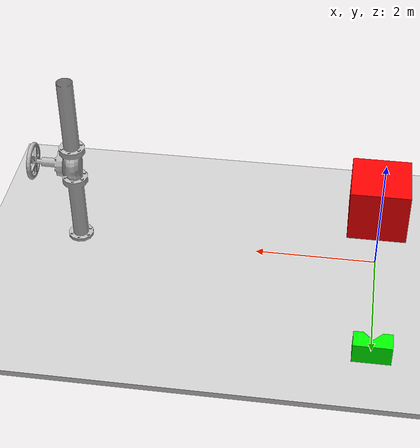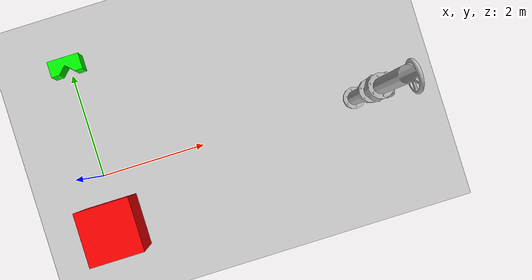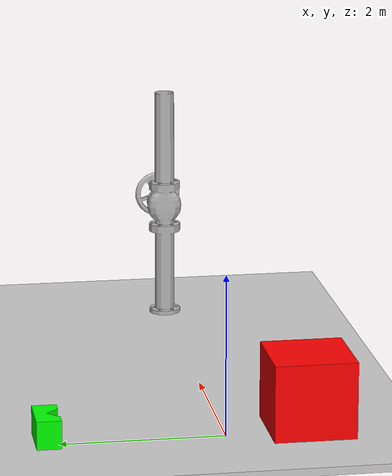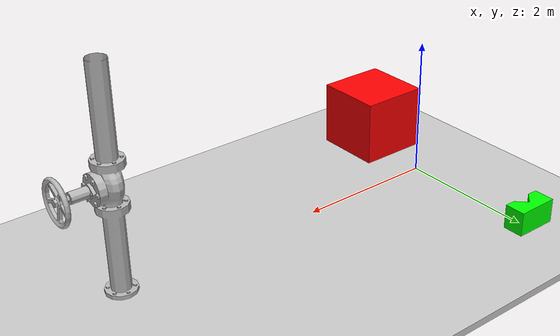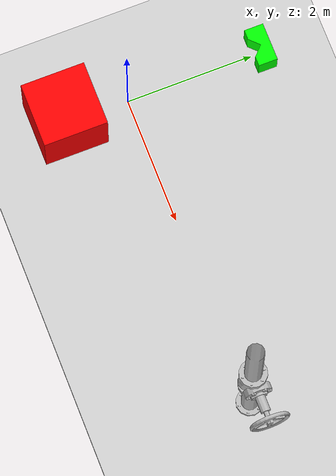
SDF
<?xml version="1.0" ?>

<sdf version="1.6">
  <world name="visualize_lidar_world">

    <physics name="1ms" type="ignored">
      <max_step_size>0.001</max_step_size>
      <real_time_factor>1.0</real_time_factor>
    </physics>
    <plugin
      filename="libignition-gazebo-physics-system.so"
      name="ignition::gazebo::systems::Physics">
    </plugin>
    <plugin
      filename="libignition-gazebo-sensors-system.so"
      name="ignition::gazebo::systems::Sensors">
      <render_engine>ogre2</render_engine>
    </plugin>
    <plugin
      filename="libignition-gazebo-scene-broadcaster-system.so"
      name="ignition::gazebo::systems::SceneBroadcaster">
    </plugin>

    <light name="sun" type="directional">
      <cast_shadows>true</cast_shadows>
      <pose>0 0 10 0 0 0</pose>
      <diffuse>0.8 0.8 0.8 1</diffuse>
      <specular>0.2 0.2 0.2 1</specular>
      <attenuation>
        <range>1000</range>
        <constant>0.9</constant>
        <linear>0.01</linear>
        <quadratic>0.001</quadratic>
      </attenuation>
      <direction>-0.5 0.1 -0.9</direction>
    </light>

    <model name="ground_plane">
      <static>true</static>
      <pose>0 0 0 0 0 0</pose>
      <link name="link">
        <collision name="collision">
          <geometry>
            <box>
              <size>20 20 0.1</size>
            </box>
          </geometry>
        </collision>
        <visual name="visual">
          <geometry>
            <box>
              <size>20 20 0.1</size>
            </box>
          </geometry>
          <material>
            <ambient>0.8 0.8 0.8 1</ambient>
            <diffuse>0.8 0.8 0.8 1</diffuse>
            <specular>0.8 0.8 0.8 1</specular>
          </material>
        </visual>
      </link>
    </model>

    <model name="box">
      <pose>0 -1 0.5 0 0 0</pose>
      <link name="box_link">
        <inertial>
          <inertia>
            <ixx>1</ixx>
            <ixy>0</ixy>
            <ixz>0</ixz>
            <iyy>1</iyy>
            <iyz>0</iyz>
            <izz>1</izz>
          </inertia>
          <mass>1.0</mass>
        </inertial>
        <collision name="box_collision">
          <geometry>
            <box>
              <size>1 1 1</size>
            </box>
          </geometry>
        </collision>

        <visual name="box_visual">
          <geometry>
            <box>
              <size>1 1 1</size>
            </box>
          </geometry>
          <material>
            <ambient>1 0 0 1</ambient>
            <diffuse>1 0 0 1</diffuse>
            <specular>1 0 0 1</specular>
          </material>
        </visual>
      </link>
    </model>

    <include>
      <pose>5 0 0 0 0 1.57</pose>
      <uri>https://fuel.gazebosim.org/1.0/nate/models/Valve</uri>
    </include>

    <include>
      <uri>package://ignition_lecture/models/my_box</uri>
      <pose>0 2 0 0 0 0</pose>
    </include>

  </world>
</sdf>

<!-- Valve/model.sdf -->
<sdf version='1.6'>
  <model name='Valve'>
    <static>true</static>
    <link name='link'>
      <collision name='collision'>
        <geometry>
          <mesh>
            <uri>model://Valve/meshes/Valve.dae</uri>
          </mesh>
        </geometry>
      </collision>
      <visual name='visual'>
        <geometry>
          <mesh>
            <uri>model://Valve/meshes/Valve.dae</uri>
          </mesh>
        </geometry>
      </visual>
    </link>
  </model>
</sdf>

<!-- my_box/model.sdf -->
<sdf version="1.8">
    <model name="my_box">
      <link name="box_link">
        <inertial>
          <inertia>
            <ixx>1</ixx>
            <ixy>0</ixy>
            <ixz>0</ixz>
            <iyy>1</iyy>
            <iyz>0</iyz>
            <izz>1</izz>
          </inertia>
          <mass>1.0</mass>
        </inertial>
        <collision name="box_collision">
          <geometry>
            <box>
              <size>1 1 1</size>
            </box>
          </geometry>
        </collision>

        <visual name="box_visual">
          <geometry>
            <mesh>
              <uri>meshes/laser_marker.stl</uri>
              <scale>0.001 0.001 0.001</scale>
            </mesh>
          </geometry>
          <material>
            <ambient>0 1 0 1</ambient>
            <diffuse>0 1 0 1</diffuse>
            <specular>0 1 0 1</specular>
          </material>
        </visual>
      </link>
    </model>
</sdf>
